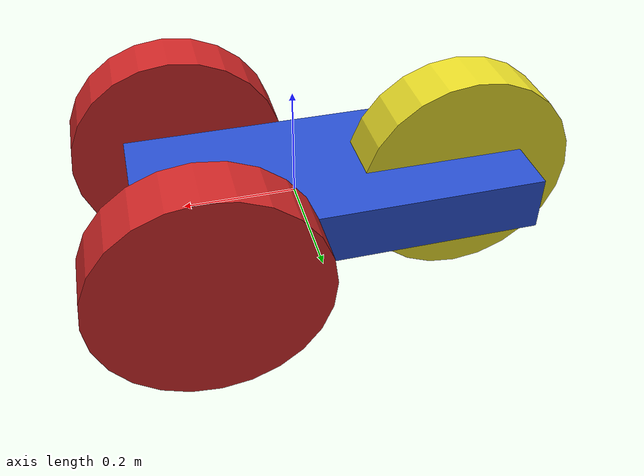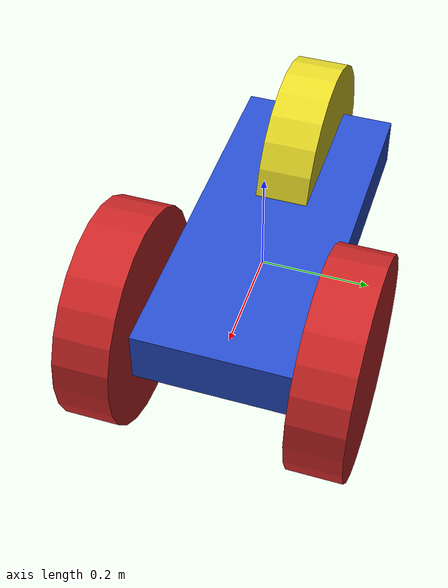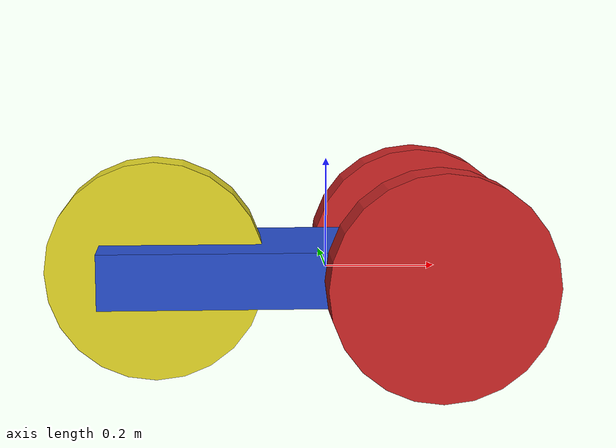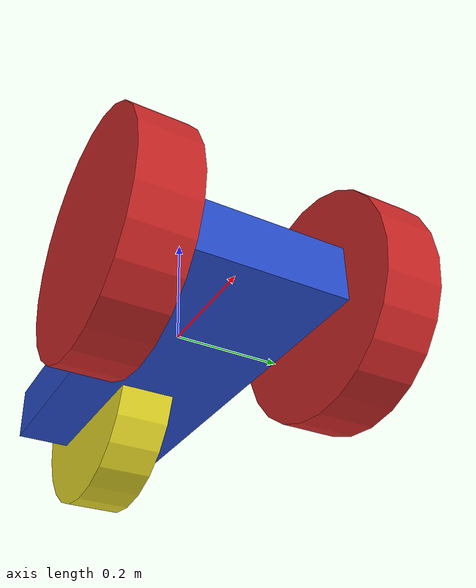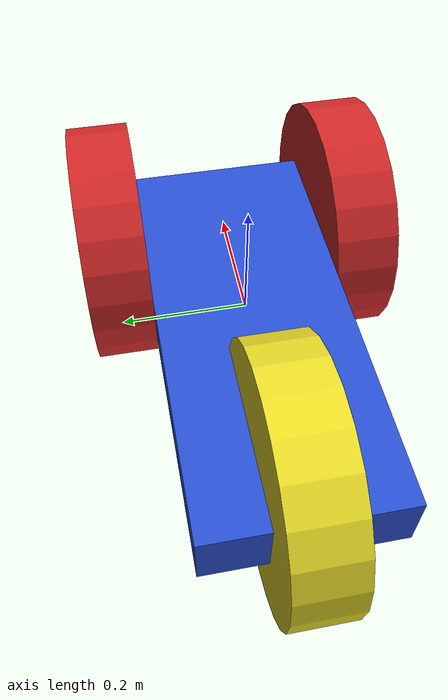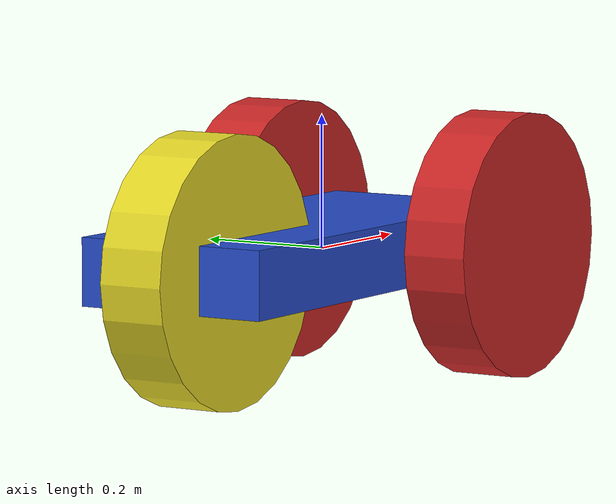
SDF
<?xml version='1.0'?>
<sdf version='1.6'>
  <model name='HumanoidRobot'>
    <link name='base_link'>
      <pose frame=''>-0.0625 -5e-06 0 0 -0 0</pose>
      <inertial>
        <mass>1</mass>
        <inertia>
          <ixx>0.166667</ixx>
          <ixy>0</ixy>
          <ixz>0</ixz>
          <iyy>0.166667</iyy>
          <iyz>0</iyz>
          <izz>0.166667</izz>
        </inertia>
        <pose frame=''>0 0 0 0 -0 0</pose>
      </inertial>
      <gravity>1</gravity>
      <self_collide>0</self_collide>
      <kinematic>0</kinematic>
      <visual name='visual'>
        <pose frame=''>0 0 0 0 -0 0</pose>
        <geometry>
          <box>
            <size>0.7 0.3 0.1</size>
          </box>
        </geometry>
        <material>
          <lighting>1</lighting>
          <script>
            <uri>file://media/materials/scripts/gazebo.material</uri>
            <name>Gazebo/Blue</name>
          </script>
          <shader type='pixel'>
            <normal_map>__default__</normal_map>
          </shader>
          <ambient>0 0 1 1</ambient>
          <diffuse>0 0 1 1</diffuse>
          <specular>0.1 0.1 0.1 1 1</specular>
          <emissive>0 0 0 1</emissive>
        </material>
        <transparency>0</transparency>
        <cast_shadows>1</cast_shadows>
      </visual>
      <collision name='collision'>
        <laser_retro>0</laser_retro>
        <max_contacts>10</max_contacts>
        <pose frame=''>0 0 0 0 -0 0</pose>
        <geometry>
          <box>
            <size>0.7 0.3 0.1</size>
          </box>
        </geometry>
        <surface>
          <friction>
            <ode>
              <mu>1</mu>
              <mu2>1</mu2>
              <fdir1>0 0 0</fdir1>
              <slip1>0</slip1>
              <slip2>0</slip2>
            </ode>
            <torsional>
              <coefficient>1</coefficient>
              <patch_radius>0</patch_radius>
              <surface_radius>0</surface_radius>
              <use_patch_radius>1</use_patch_radius>
              <ode>
                <slip>0</slip>
              </ode>
            </torsional>
          </friction>
          <bounce>
            <restitution_coefficient>0</restitution_coefficient>
            <threshold>1e+06</threshold>
          </bounce>
          <contact>
            <collide_without_contact>0</collide_without_contact>
            <collide_without_contact_bitmask>1</collide_without_contact_bitmask>
            <collide_bitmask>1</collide_bitmask>
            <ode>
              <soft_cfm>0</soft_cfm>
              <soft_erp>0.2</soft_erp>
              <kp>1e+13</kp>
              <kd>1</kd>
              <max_vel>0.01</max_vel>
              <min_depth>0</min_depth>
            </ode>
            <bullet>
              <split_impulse>1</split_impulse>
              <split_impulse_penetration_threshold>-0.01</split_impulse_penetration_threshold>
              <soft_cfm>0</soft_cfm>
              <soft_erp>0.2</soft_erp>
              <kp>1e+13</kp>
              <kd>1</kd>
            </bullet>
          </contact>
        </surface>
      </collision>
    </link>
    <link name='right_wheel'>
      <pose frame=''>0.1875 -0.200005 0 0 -0 0</pose>
      <inertial>
        <mass>1</mass>
        <inertia>
          <ixx>0.145833</ixx>
          <ixy>0</ixy>
          <ixz>0</ixz>
          <iyy>0.145833</iyy>
          <iyz>0</iyz>
          <izz>0.125</izz>
        </inertia>
        <pose frame=''>0 0 0 0 -0 0</pose>
      </inertial>
      <gravity>1</gravity>
      <self_collide>0</self_collide>
      <kinematic>0</kinematic>
      <visual name='visual'>
        <pose frame=''>0 0 0 1.5707 -0 0</pose>
        <geometry>
          <cylinder>
            <radius>0.2</radius>
            <length>0.1</length>
          </cylinder>
        </geometry>
        <material>
          <lighting>1</lighting>
          <script>
            <uri>file://media/materials/scripts/gazebo.material</uri>
            <name>Gazebo/Red</name>
          </script>
          <shader type='pixel'>
            <normal_map>__default__</normal_map>
          </shader>
          <ambient>1 0 0 1</ambient>
          <diffuse>1 0 0 1</diffuse>
          <specular>0.1 0.1 0.1 1 1</specular>
          <emissive>0 0 0 1</emissive>
        </material>
        <transparency>0</transparency>
        <cast_shadows>1</cast_shadows>
      </visual>
      <collision name='collision'>
        <laser_retro>0</laser_retro>
        <max_contacts>10</max_contacts>
        <pose frame=''>0 0 0 1.5707 -0 0</pose>
        <geometry>
          <cylinder>
            <radius>0.2</radius>
            <length>0.1</length>
          </cylinder>
        </geometry>
        <surface>
          <friction>
            <ode>
              <mu>1</mu>
              <mu2>1</mu2>
              <fdir1>0 0 0</fdir1>
              <slip1>0</slip1>
              <slip2>0</slip2>
            </ode>
            <torsional>
              <coefficient>1</coefficient>
              <patch_radius>0</patch_radius>
              <surface_radius>0</surface_radius>
              <use_patch_radius>1</use_patch_radius>
              <ode>
                <slip>0</slip>
              </ode>
            </torsional>
          </friction>
          <bounce>
            <restitution_coefficient>0</restitution_coefficient>
            <threshold>1e+06</threshold>
          </bounce>
          <contact>
            <collide_without_contact>0</collide_without_contact>
            <collide_without_contact_bitmask>1</collide_without_contact_bitmask>
            <collide_bitmask>1</collide_bitmask>
            <ode>
              <soft_cfm>0</soft_cfm>
              <soft_erp>0.2</soft_erp>
              <kp>1e+13</kp>
              <kd>1</kd>
              <max_vel>0.01</max_vel>
              <min_depth>0</min_depth>
            </ode>
            <bullet>
              <split_impulse>1</split_impulse>
              <split_impulse_penetration_threshold>-0.01</split_impulse_penetration_threshold>
              <soft_cfm>0</soft_cfm>
              <soft_erp>0.2</soft_erp>
              <kp>1e+13</kp>
              <kd>1</kd>
            </bullet>
          </contact>
        </surface>
      </collision>
    </link>
    <link name='left_wheel'>
      <pose frame=''>0.1875 0.199995 0 0 -0 0</pose>
      <inertial>
        <mass>1</mass>
        <inertia>
          <ixx>0.145833</ixx>
          <ixy>0</ixy>
          <ixz>0</ixz>
          <iyy>0.145833</iyy>
          <iyz>0</iyz>
          <izz>0.125</izz>
        </inertia>
        <pose frame=''>0 0 0 0 -0 0</pose>
      </inertial>
      <self_collide>0</self_collide>
      <kinematic>0</kinematic>
      <visual name='visual'>
        <pose frame=''>0 0 0 1.5707 -0 0</pose>
        <geometry>
          <cylinder>
            <radius>0.2</radius>
            <length>0.1</length>
          </cylinder>
        </geometry>
        <material>
          <lighting>1</lighting>
          <script>
            <uri>file://media/materials/scripts/gazebo.material</uri>
            <name>Gazebo/Red</name>
          </script>
          <shader type='pixel'>
            <normal_map>__default__</normal_map>
          </shader>
          <ambient>1 0 0 1</ambient>
          <diffuse>1 0 0 1</diffuse>
          <specular>0.1 0.1 0.1 1 1</specular>
          <emissive>0 0 0 1</emissive>
        </material>
        <transparency>0</transparency>
        <cast_shadows>1</cast_shadows>
      </visual>
      <collision name='collision'>
        <laser_retro>0</laser_retro>
        <max_contacts>10</max_contacts>
        <pose frame=''>0 0 0 1.5707 -0 0</pose>
        <geometry>
          <cylinder>
            <radius>0.2</radius>
            <length>0.1</length>
          </cylinder>
        </geometry>
        <surface>
          <friction>
            <ode>
              <mu>1</mu>
              <mu2>1</mu2>
              <fdir1>0 0 0</fdir1>
              <slip1>0</slip1>
              <slip2>0</slip2>
            </ode>
            <torsional>
              <coefficient>1</coefficient>
              <patch_radius>0</patch_radius>
              <surface_radius>0</surface_radius>
              <use_patch_radius>1</use_patch_radius>
              <ode>
                <slip>0</slip>
              </ode>
            </torsional>
          </friction>
          <bounce>
            <restitution_coefficient>0</restitution_coefficient>
            <threshold>1e+06</threshold>
          </bounce>
          <contact>
            <collide_without_contact>0</collide_without_contact>
            <collide_without_contact_bitmask>1</collide_without_contact_bitmask>
            <collide_bitmask>1</collide_bitmask>
            <ode>
              <soft_cfm>0</soft_cfm>
              <soft_erp>0.2</soft_erp>
              <kp>1e+13</kp>
              <kd>1</kd>
              <max_vel>0.01</max_vel>
              <min_depth>0</min_depth>
            </ode>
            <bullet>
              <split_impulse>1</split_impulse>
              <split_impulse_penetration_threshold>-0.01</split_impulse_penetration_threshold>
              <soft_cfm>0</soft_cfm>
              <soft_erp>0.2</soft_erp>
              <kp>1e+13</kp>
              <kd>1</kd>
            </bullet>
          </contact>
        </surface>
      </collision>
    </link>
    <link name='caster_wheel'>
      <pose frame=''>-0.3125 -5e-06 0 0 -0 0</pose>
      <inertial>
        <mass>1</mass>
        <inertia>
          <ixx>0.145833</ixx>
          <ixy>0</ixy>
          <ixz>0</ixz>
          <iyy>0.145833</iyy>
          <iyz>0</iyz>
          <izz>0.125</izz>
        </inertia>
        <pose frame=''>0 0 0 0 -0 0</pose>
      </inertial>
      <self_collide>0</self_collide>
      <kinematic>0</kinematic>
      <visual name='visual'>
        <pose frame=''>0 0 0 1.5707 -0 0</pose>
        <geometry>
          <cylinder>
            <radius>0.2</radius>
            <length>0.1</length>
          </cylinder>
        </geometry>
        <material>
          <lighting>1</lighting>
          <script>
            <uri>file://media/materials/scripts/gazebo.material</uri>
            <name>Gazebo/Yellow</name>
          </script>
          <shader type='pixel'>
            <normal_map>__default__</normal_map>
          </shader>
          <ambient>1 1 0 1</ambient>
          <diffuse>1 1 0 1</diffuse>
          <specular>0.1 0.1 0.1 1 1</specular>
          <emissive>0 0 0 1</emissive>
        </material>
        <transparency>0</transparency>
        <cast_shadows>1</cast_shadows>
      </visual>
      <collision name='collision'>
        <laser_retro>0</laser_retro>
        <max_contacts>10</max_contacts>
        <pose frame=''>0 0 0 1.5707 -0 0</pose>
        <geometry>
          <cylinder>
            <radius>0.2</radius>
            <length>0.1</length>
          </cylinder>
        </geometry>
        <surface>
          <friction>
            <ode>
              <mu>1</mu>
              <mu2>1</mu2>
              <fdir1>0 0 0</fdir1>
              <slip1>0</slip1>
              <slip2>0</slip2>
            </ode>
            <torsional>
              <coefficient>1</coefficient>
              <patch_radius>0</patch_radius>
              <surface_radius>0</surface_radius>
              <use_patch_radius>1</use_patch_radius>
              <ode>
                <slip>0</slip>
              </ode>
            </torsional>
          </friction>
          <bounce>
            <restitution_coefficient>0</restitution_coefficient>
            <threshold>1e+06</threshold>
          </bounce>
          <contact>
            <collide_without_contact>0</collide_without_contact>
            <collide_without_contact_bitmask>1</collide_without_contact_bitmask>
            <collide_bitmask>1</collide_bitmask>
            <ode>
              <soft_cfm>0</soft_cfm>
              <soft_erp>0.2</soft_erp>
              <kp>1e+13</kp>
              <kd>1</kd>
              <max_vel>0.01</max_vel>
              <min_depth>0</min_depth>
            </ode>
            <bullet>
              <split_impulse>1</split_impulse>
              <split_impulse_penetration_threshold>-0.01</split_impulse_penetration_threshold>
              <soft_cfm>0</soft_cfm>
              <soft_erp>0.2</soft_erp>
              <kp>1e+13</kp>
              <kd>1</kd>
            </bullet>
          </contact>
        </surface>
      </collision>
    </link>
    <joint name='base_link_JOINT_0' type='revolute'>
      <parent>base_link</parent>
      <child>right_wheel</child>
      <pose frame=''>0 0 0 0 -0 0</pose>
      <axis>
        <xyz>0 0 1</xyz>
        <use_parent_model_frame>0</use_parent_model_frame>
        <limit>
          <lower>-1.79769e+308</lower>
          <upper>1.79769e+308</upper>
          <effort>-1</effort>
          <velocity>-1</velocity>
        </limit>
        <dynamics>
          <spring_reference>0</spring_reference>
          <spring_stiffness>0</spring_stiffness>
          <damping>0</damping>
        </dynamics>
      </axis>
      <physics>
        <ode>
          <limit>
            <cfm>0</cfm>
            <erp>0.2</erp>
          </limit>
          <suspension>
            <cfm>0</cfm>
            <erp>0.2</erp>
          </suspension>
        </ode>
      </physics>
    </joint>
    <joint name='base_link_JOINT_1' type='revolute'>
      <parent>base_link</parent>
      <child>left_wheel</child>
      <pose frame=''>0 0 0 0 -0 0</pose>
      <axis>
        <xyz>0 0 1</xyz>
        <use_parent_model_frame>0</use_parent_model_frame>
        <limit>
          <lower>-1.79769e+308</lower>
          <upper>1.79769e+308</upper>
          <effort>-1</effort>
          <velocity>-1</velocity>
        </limit>
        <dynamics>
          <spring_reference>0</spring_reference>
          <spring_stiffness>0</spring_stiffness>
          <damping>0</damping>
        </dynamics>
      </axis>
      <physics>
        <ode>
          <limit>
            <cfm>0</cfm>
            <erp>0.2</erp>
          </limit>
          <suspension>
            <cfm>0</cfm>
            <erp>0.2</erp>
          </suspension>
        </ode>
      </physics>
    </joint>
    <joint name='base_link_JOINT_2' type='fixed'>
      <parent>base_link</parent>
      <child>caster_wheel</child>
      <pose frame=''>0 0 0 0 -0 0</pose>
      <physics>
        <ode>
          <limit>
            <cfm>0</cfm>
            <erp>0.2</erp>
          </limit>
          <suspension>
            <cfm>0</cfm>
            <erp>0.2</erp>
          </suspension>
        </ode>
      </physics>
    </joint>
    <static>0</static>
    <allow_auto_disable>1</allow_auto_disable>
  </model>
</sdf>
